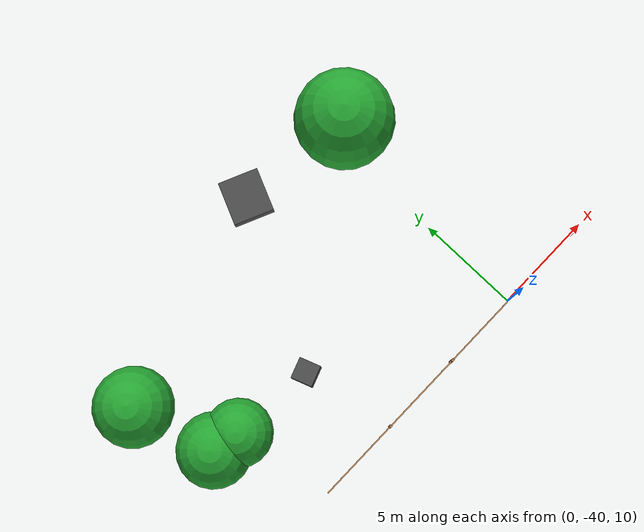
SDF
<sdf version="1.6">
 <world name="outdoor_v2">
  <include><uri>model://sun</uri></include>
  <model name="tree_41">
   <static>true</static>
   <pose>-0.16 -29.74 11.70 0 0 0.667</pose>
   <link name="link">
    <collision name="trunk_c">
     <pose>0 0 1.5 0 0 0</pose>
     <geometry><cylinder><radius>0.22</radius><length>3.0</length></cylinder></geometry>
    </collision>
    <visual name="trunk_v">
     <pose>0 0 1.5 0 0 0</pose>
     <geometry><cylinder><radius>0.22</radius><length>3.0</length></cylinder></geometry>
     <material>
      <script><uri>file://media/materials/scripts/gazebo.material</uri><name>Gazebo/Wood</name></script>
     </material>
    </visual>
    <collision name="canopy_c">
     <pose>0 0 4.5 0 0 0</pose>
     <geometry><sphere><radius>2.15</radius></sphere></geometry>
    </collision>
    <visual name="canopy_v">
     <pose>0 0 4.5 0 0 0</pose>
     <geometry><sphere><radius>2.15</radius></sphere></geometry>
     <material>
      <script><uri>file://media/materials/scripts/gazebo.material</uri><name>Gazebo/Green</name></script>
     </material>
    </visual>
   </link>
  </model>
  <model name="tree_48">
   <static>true</static>
   <pose>-14.86 -31.66 10.52 0 0 2.183</pose>
   <link name="link">
    <collision name="trunk_c">
     <pose>0 0 1.5 0 0 0</pose>
     <geometry><cylinder><radius>0.22</radius><length>3.0</length></cylinder></geometry>
    </collision>
    <visual name="trunk_v">
     <pose>0 0 1.5 0 0 0</pose>
     <geometry><cylinder><radius>0.22</radius><length>3.0</length></cylinder></geometry>
     <material>
      <script><uri>file://media/materials/scripts/gazebo.material</uri><name>Gazebo/Wood</name></script>
     </material>
    </visual>
    <collision name="canopy_c">
     <pose>0 0 4.5 0 0 0</pose>
     <geometry><sphere><radius>1.72</radius></sphere></geometry>
    </collision>
    <visual name="canopy_v">
     <pose>0 0 4.5 0 0 0</pose>
     <geometry><sphere><radius>1.72</radius></sphere></geometry>
     <material>
      <script><uri>file://media/materials/scripts/gazebo.material</uri><name>Gazebo/Green</name></script>
     </material>
    </visual>
   </link>
  </model>
  <model name="tree_49">
   <static>true</static>
   <pose>-12.59 -35.58 10.78 0 0 0.815</pose>
   <link name="link">
    <collision name="trunk_c">
     <pose>0 0 1.5 0 0 0</pose>
     <geometry><cylinder><radius>0.22</radius><length>3.0</length></cylinder></geometry>
    </collision>
    <visual name="trunk_v">
     <pose>0 0 1.5 0 0 0</pose>
     <geometry><cylinder><radius>0.22</radius><length>3.0</length></cylinder></geometry>
     <material>
      <script><uri>file://media/materials/scripts/gazebo.material</uri><name>Gazebo/Wood</name></script>
     </material>
    </visual>
    <collision name="canopy_c">
     <pose>0 0 4.5 0 0 0</pose>
     <geometry><sphere><radius>1.44</radius></sphere></geometry>
    </collision>
    <visual name="canopy_v">
     <pose>0 0 4.5 0 0 0</pose>
     <geometry><sphere><radius>1.44</radius></sphere></geometry>
     <material>
      <script><uri>file://media/materials/scripts/gazebo.material</uri><name>Gazebo/Green</name></script>
     </material>
    </visual>
   </link>
  </model>
  <model name="tree_51">
   <static>true</static>
   <pose>-13.80 -35.33 10.66 0 0 1.025</pose>
   <link name="link">
    <collision name="trunk_c">
     <pose>0 0 1.5 0 0 0</pose>
     <geometry><cylinder><radius>0.22</radius><length>3.0</length></cylinder></geometry>
    </collision>
    <visual name="trunk_v">
     <pose>0 0 1.5 0 0 0</pose>
     <geometry><cylinder><radius>0.22</radius><length>3.0</length></cylinder></geometry>
     <material>
      <script><uri>file://media/materials/scripts/gazebo.material</uri><name>Gazebo/Wood</name></script>
     </material>
    </visual>
    <collision name="canopy_c">
     <pose>0 0 4.5 0 0 0</pose>
     <geometry><sphere><radius>1.60</radius></sphere></geometry>
    </collision>
    <visual name="canopy_v">
     <pose>0 0 4.5 0 0 0</pose>
     <geometry><sphere><radius>1.60</radius></sphere></geometry>
     <material>
      <script><uri>file://media/materials/scripts/gazebo.material</uri><name>Gazebo/Green</name></script>
     </material>
    </visual>
   </link>
  </model>
  <model name="rock_17">
   <static>true</static>
   <pose>-8.86 -35.65 11.68 0 0 0.347</pose>
   <link name="link">
    <collision name="rock_c"><geometry><box><size>0.98 1.00 1.56</size></box></geometry></collision>
    <visual name="rock_v">
     <geometry><box><size>0.98 1.00 1.56</size></box></geometry>
     <material>
      <script><uri>file://media/materials/scripts/gazebo.material</uri><name>Gazebo/DarkGrey</name></script>
     </material>
    </visual>
   </link>
  </model>
  <model name="rock_39">
   <static>true</static>
   <pose>-5.01 -28.14 11.63 0 0 1.149</pose>
   <link name="link">
    <collision name="rock_c"><geometry><box><size>2.06 1.90 0.65</size></box></geometry></collision>
    <visual name="rock_v">
     <geometry><box><size>2.06 1.90 0.65</size></box></geometry>
     <material>
      <script><uri>file://media/materials/scripts/gazebo.material</uri><name>Gazebo/DarkGrey</name></script>
     </material>
    </visual>
   </link>
  </model>
  <model name="rail_7">
   <static>true</static>
   <pose>-10.00 -40.00 10.70 0 0 0.000</pose>
   <link name="link">
    <collision name="rail_c">
     <pose>0 0 1.1 0 0 0</pose>
     <geometry><box><size>4.0 0.06 0.06</size></box></geometry>
    </collision>
    <visual name="rail_v">
     <pose>0 0 1.1 0 0 0</pose>
     <geometry><box><size>4.0 0.06 0.06</size></box></geometry>
     <material>
      <script><uri>file://media/materials/scripts/gazebo.material</uri><name>Gazebo/Wood</name></script>
     </material>
    </visual>
   </link>
  </model>
  <model name="post_8">
   <static>true</static>
   <pose>-8.00 -40.00 10.77 0 0 0.000</pose>
   <link name="link">
    <collision name="post_c">
     <pose>0 0 0.7 0 0 0</pose>
     <geometry><box><size>0.12 0.12 1.4</size></box></geometry>
    </collision>
    <visual name="post_v">
     <pose>0 0 0.7 0 0 0</pose>
     <geometry><box><size>0.12 0.12 1.4</size></box></geometry>
     <material>
      <script><uri>file://media/materials/scripts/gazebo.material</uri><name>Gazebo/Wood</name></script>
     </material>
    </visual>
   </link>
  </model>
  <model name="rail_8">
   <static>true</static>
   <pose>-6.00 -40.00 10.82 0 0 0.000</pose>
   <link name="link">
    <collision name="rail_c">
     <pose>0 0 1.1 0 0 0</pose>
     <geometry><box><size>4.0 0.06 0.06</size></box></geometry>
    </collision>
    <visual name="rail_v">
     <pose>0 0 1.1 0 0 0</pose>
     <geometry><box><size>4.0 0.06 0.06</size></box></geometry>
     <material>
      <script><uri>file://media/materials/scripts/gazebo.material</uri><name>Gazebo/Wood</name></script>
     </material>
    </visual>
   </link>
  </model>
  <model name="post_9">
   <static>true</static>
   <pose>-4.00 -40.00 10.83 0 0 0.000</pose>
   <link name="link">
    <collision name="post_c">
     <pose>0 0 0.7 0 0 0</pose>
     <geometry><box><size>0.12 0.12 1.4</size></box></geometry>
    </collision>
    <visual name="post_v">
     <pose>0 0 0.7 0 0 0</pose>
     <geometry><box><size>0.12 0.12 1.4</size></box></geometry>
     <material>
      <script><uri>file://media/materials/scripts/gazebo.material</uri><name>Gazebo/Wood</name></script>
     </material>
    </visual>
   </link>
  </model>
  <model name="rail_9">
   <static>true</static>
   <pose>-2.00 -40.00 10.81 0 0 0.000</pose>
   <link name="link">
    <collision name="rail_c">
     <pose>0 0 1.1 0 0 0</pose>
     <geometry><box><size>4.0 0.06 0.06</size></box></geometry>
    </collision>
    <visual name="rail_v">
     <pose>0 0 1.1 0 0 0</pose>
     <geometry><box><size>4.0 0.06 0.06</size></box></geometry>
     <material>
      <script><uri>file://media/materials/scripts/gazebo.material</uri><name>Gazebo/Wood</name></script>
     </material>
    </visual>
   </link>
  </model>
  <model name="post_10">
   <static>true</static>
   <pose>0.00 -40.00 10.75 0 0 0.000</pose>
   <link name="link">
    <collision name="post_c">
     <pose>0 0 0.7 0 0 0</pose>
     <geometry><box><size>0.12 0.12 1.4</size></box></geometry>
    </collision>
    <visual name="post_v">
     <pose>0 0 0.7 0 0 0</pose>
     <geometry><box><size>0.12 0.12 1.4</size></box></geometry>
     <material>
      <script><uri>file://media/materials/scripts/gazebo.material</uri><name>Gazebo/Wood</name></script>
     </material>
    </visual>
   </link>
  </model>
  <model name="rail_10">
   <static>true</static>
   <pose>2.00 -40.00 10.67 0 0 0.000</pose>
   <link name="link">
    <collision name="rail_c">
     <pose>0 0 1.1 0 0 0</pose>
     <geometry><box><size>4.0 0.06 0.06</size></box></geometry>
    </collision>
    <visual name="rail_v">
     <pose>0 0 1.1 0 0 0</pose>
     <geometry><box><size>4.0 0.06 0.06</size></box></geometry>
     <material>
      <script><uri>file://media/materials/scripts/gazebo.material</uri><name>Gazebo/Wood</name></script>
     </material>
    </visual>
   </link>
  </model>
  <model name="post_11">
   <static>true</static>
   <pose>4.00 -40.00 10.56 0 0 0.000</pose>
   <link name="link">
    <collision name="post_c">
     <pose>0 0 0.7 0 0 0</pose>
     <geometry><box><size>0.12 0.12 1.4</size></box></geometry>
    </collision>
    <visual name="post_v">
     <pose>0 0 0.7 0 0 0</pose>
     <geometry><box><size>0.12 0.12 1.4</size></box></geometry>
     <material>
      <script><uri>file://media/materials/scripts/gazebo.material</uri><name>Gazebo/Wood</name></script>
     </material>
    </visual>
   </link>
  </model>
 </world>
</sdf>
